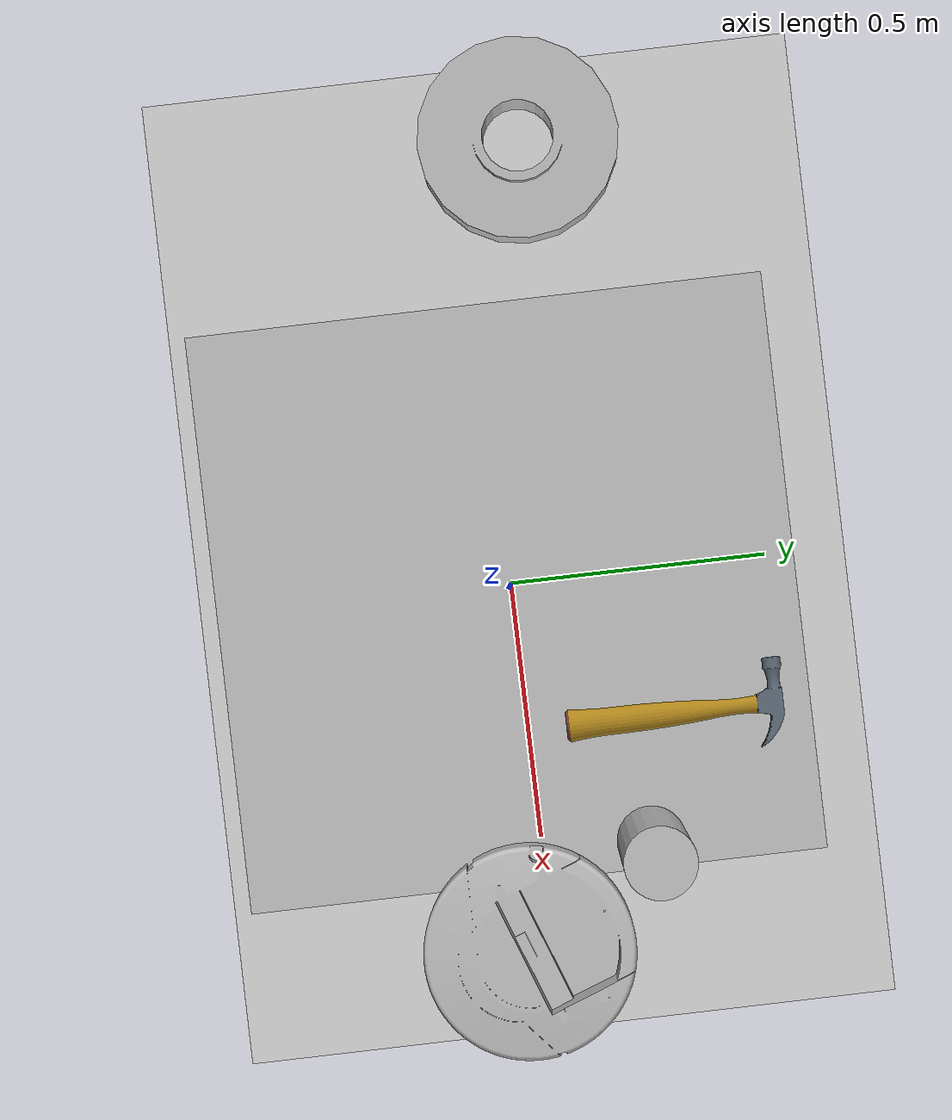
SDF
<sdf version="1.6">
 <world name="default">
  <light name="sun" type="directional">
   <pose>0 0 10 0 -0 0</pose>
   <diffuse>0.8 0.8 0.8 1</diffuse>
   <specular>0.2 0.2 0.2 1</specular>
   <attenuation>
    <range>1000</range>
    <constant>0.9</constant>
    <linear>0.01</linear>
    <quadratic>0.001</quadratic>
   </attenuation>
   <direction>-0.5 0.1 -0.9</direction>
  </light>
  <model name="ground_plane">
   <static>1</static>
   <link name="link">
    <collision name="collision">
     <geometry><plane><normal>0 0 1</normal><size>100 100</size></plane></geometry>
     <surface><friction><ode><mu>100</mu><mu2>50</mu2></ode></friction></surface>
    </collision>
    <visual name="visual">
     <cast_shadows>0</cast_shadows>
     <geometry><plane><normal>0 0 1</normal><size>100 100</size></plane></geometry>
     <material>
      <script><uri>file://media/materials/scripts/gazebo.material</uri><name>Gazebo/Grey</name></script>
     </material>
    </visual>
   </link>
  </model>
  <gravity>0 0 -9.8</gravity>
  <magnetic_field>6e-06 2.3e-05 -4.2e-05</magnetic_field>
  <atmosphere type="adiabatic"/>
  <physics name="default_physics" default="0" type="ode">
   <max_step_size>0.001</max_step_size>
   <real_time_factor>1</real_time_factor>
   <real_time_update_rate>1000</real_time_update_rate>
  </physics>
  <scene><ambient>0.4 0.4 0.4 1</ambient><background>0.7 0.7 0.7 1</background><shadows>1</shadows></scene>
  <spherical_coordinates>
   <surface_model>EARTH_WGS84</surface_model>
   <latitude_deg>0</latitude_deg>
   <longitude_deg>0</longitude_deg>
   <elevation>0</elevation>
   <heading_deg>0</heading_deg>
  </spherical_coordinates>
  <model name="coke_can">
   <link name="link">
    <inertial>
     <pose>-0.01 -0.012 0.15 0 -0 0</pose>
     <mass>0.39</mass>
     <inertia><ixx>0.00058</ixx><ixy>0</ixy><ixz>0</ixz><iyy>0.00058</iyy><iyz>0</iyz><izz>0.00019</izz></inertia>
    </inertial>
    <collision name="collision">
     <pose>0 0 -0.46 0 -0 0</pose>
     <geometry><mesh><uri>model://coke_can/meshes/coke_can.dae</uri><scale>1 1 1</scale></mesh></geometry>
     <surface>
      <friction><ode><mu>1</mu><mu2>1</mu2></ode></friction>
      <contact><ode><kp>1e+07</kp><kd>1</kd><min_depth>0.001</min_depth><max_vel>0.1</max_vel></ode></contact>
     </surface>
    </collision>
    <visual name="visual">
     <pose>0 0 -0.46 0 -0 0</pose>
     <geometry><mesh><uri>model://coke_can/meshes/coke_can.dae</uri><scale>1 1 1</scale></mesh></geometry>
    </visual>
   </link>
   <pose>-8e-06 0.199942 0.771147 -0.006158 0.002211 -0.396631</pose>
  </model>
  <model name="beer">
   <link name="link">
    <pose>0 0 0.115 0 -0 0</pose>
    <inertial>
     <mass>0.39</mass>
     <inertia><ixx>0.00058</ixx><ixy>0</ixy><ixz>0</ixz><iyy>0.00058</iyy><iyz>0</iyz><izz>0.00019</izz></inertia>
    </inertial>
    <collision name="collision">
     <geometry><cylinder><radius>0.055</radius><length>0.23</length></cylinder></geometry>
    </collision>
    <visual name="visual">
     <geometry><cylinder><radius>0.055</radius><length>0.23</length></cylinder></geometry>
     <material>
      <script>
       <uri>model://beer/materials/scripts</uri>
       <uri>model://beer/materials/textures</uri>
       <name>Beer/Diffuse</name>
      </script>
     </material>
    </visual>
   </link>
   <pose>0.414397 0.183402 0.77499 1e-06 -2.7e-05 -0.001998</pose>
  </model>
  <model name="create">
   <link name="base">
    <inertial>
     <pose>0.001453 -0.000453 0.029787 0 -0 0</pose>
     <inertia>
      <ixx>0.05864</ixx>
      <ixy>0.000124</ixy>
      <ixz>0.000615</ixz>
      <iyy>0.058786</iyy>
      <iyz>1.4e-05</iyz>
      <izz>1.53244</izz>
     </inertia>
     <mass>2.234</mass>
    </inertial>
    <collision name="base_collision">
     <pose>0 0 0.0478 0 -0 0</pose>
     <geometry><cylinder><radius>0.016495</radius><length>0.061163</length></cylinder></geometry>
    </collision>
    <visual name="base_visual">
     <pose>0 0 0.0478 0 -0 0</pose>
     <geometry><mesh><uri>model://create/meshes/create_body.dae</uri><scale>1 1 1</scale></mesh></geometry>
    </visual>
    <collision name="front_wheel_collision">
     <pose>0.13 0 0.017 -0 1.5707 1.5707</pose>
     <geometry><sphere><radius>0.018</radius></sphere></geometry>
     <surface>
      <friction><ode><mu>0</mu><mu2>0</mu2><fdir1>0 0 0</fdir1><slip1>0</slip1><slip2>0</slip2></ode></friction>
     </surface>
    </collision>
    <visual name="front_wheel_visual">
     <pose>0.13 0 0.017 -0 1.5707 1.5707</pose>
     <geometry><sphere><radius>0.009</radius></sphere></geometry>
    </visual>
    <collision name="rear_wheel_collision">
     <pose>-0.13 0 0.017 -0 1.5707 1.5707</pose>
     <geometry><sphere><radius>0.015</radius></sphere></geometry>
     <surface>
      <friction><ode><mu>0</mu><mu2>0</mu2><fdir1>0 0 0</fdir1><slip1>0</slip1><slip2>0</slip2></ode></friction>
     </surface>
    </collision>
    <visual name="rear_wheel_visual">
     <pose>-0.13 0 0.017 -0 1.5707 1.5707</pose>
     <geometry><sphere><radius>0.0075</radius></sphere></geometry>
    </visual>
    <sensor name="left_cliff_sensor" type="ray">
     <pose>0.07 0.14 0.027 0 1.57079 0</pose>
     <ray>
      <scan>
       <horizontal>
        <samples>1</samples>
        <resolution>1</resolution>
        <min_angle>0</min_angle>
        <max_angle>0</max_angle>
       </horizontal>
       <vertical><samples>1</samples><min_angle>0</min_angle><max_angle>0</max_angle></vertical>
      </scan>
      <range><min>0.01</min><max>0.04</max><resolution>0.1</resolution></range>
     </ray>
    </sensor>
    <sensor name="leftfront_cliff_sensor" type="ray">
     <pose>0.15 0.04 0.027 0 1.57079 0</pose>
     <ray>
      <scan>
       <horizontal>
        <samples>1</samples>
        <resolution>1</resolution>
        <min_angle>0</min_angle>
        <max_angle>0</max_angle>
       </horizontal>
       <vertical><samples>1</samples><min_angle>0</min_angle><max_angle>0</max_angle></vertical>
      </scan>
      <range><min>0.01</min><max>0.04</max><resolution>0.1</resolution></range>
     </ray>
    </sensor>
    <sensor name="right_cliff_sensor" type="ray">
     <pose>0.07 -0.14 0.027 0 1.57079 0</pose>
     <ray>
      <scan>
       <horizontal>
        <samples>1</samples>
        <resolution>1</resolution>
        <min_angle>0</min_angle>
        <max_angle>0</max_angle>
       </horizontal>
       <vertical><samples>1</samples><min_angle>0</min_angle><max_angle>0</max_angle></vertical>
      </scan>
      <range><min>0.01</min><max>0.04</max><resolution>0.1</resolution></range>
     </ray>
    </sensor>
    <sensor name="rightfront_cliff_sensor" type="ray">
     <pose>0.15 -0.04 0.027 0 1.57079 0</pose>
     <ray>
      <scan>
       <horizontal>
        <samples>1</samples>
        <resolution>1</resolution>
        <min_angle>0</min_angle>
        <max_angle>0</max_angle>
       </horizontal>
       <vertical><samples>1</samples><min_angle>0</min_angle><max_angle>0</max_angle></vertical>
      </scan>
      <range><min>0.01</min><max>0.04</max><resolution>0.1</resolution></range>
     </ray>
    </sensor>
    <sensor name="wall_sensor" type="ray">
     <pose>0.09 -0.12 0.059 0 0 -1</pose>
     <ray>
      <scan>
       <horizontal>
        <samples>1</samples>
        <resolution>1</resolution>
        <min_angle>0</min_angle>
        <max_angle>0</max_angle>
       </horizontal>
       <vertical><samples>1</samples><min_angle>0</min_angle><max_angle>0</max_angle></vertical>
      </scan>
      <range><min>0.016</min><max>0.04</max><resolution>0.1</resolution></range>
     </ray>
    </sensor>
   </link>
   <link name="left_wheel">
    <pose>0 0.13 0.032 0 -0 0</pose>
    <inertial>
     <inertia><ixx>0.001</ixx><ixy>0</ixy><ixz>0</ixz><iyy>0.001</iyy><iyz>0</iyz><izz>0.001</izz></inertia>
     <mass>0.01</mass>
    </inertial>
    <collision name="collision">
     <pose>0 0 0 -0 1.5707 1.5707</pose>
     <geometry><cylinder><radius>0.033</radius><length>0.023</length></cylinder></geometry>
     <surface>
      <friction><ode><mu>10</mu><mu2>10</mu2><fdir1>0 0 0</fdir1><slip1>0</slip1><slip2>0</slip2></ode></friction>
     </surface>
    </collision>
    <visual name="visual">
     <pose>0 0 0 -0 1.5707 1.5707</pose>
     <geometry><cylinder><radius>0.033</radius><length>0.023</length></cylinder></geometry>
    </visual>
   </link>
   <link name="right_wheel">
    <pose>0 -0.13 0.032 0 -0 0</pose>
    <inertial>
     <inertia><ixx>0.001</ixx><ixy>0</ixy><ixz>0</ixz><iyy>0.001</iyy><iyz>0</iyz><izz>0.001</izz></inertia>
     <mass>0.01</mass>
    </inertial>
    <collision name="collision">
     <pose>0 0 0 -0 1.5707 1.5707</pose>
     <geometry><cylinder><radius>0.033</radius><length>0.023</length></cylinder></geometry>
     <surface>
      <friction><ode><mu>10</mu><mu2>10</mu2><fdir1>0 0 0</fdir1><slip1>0</slip1><slip2>0</slip2></ode></friction>
     </surface>
    </collision>
    <visual name="visual">
     <pose>0 0 0 -0 1.5707 1.5707</pose>
     <geometry><cylinder><radius>0.033</radius><length>0.023</length></cylinder></geometry>
    </visual>
   </link>
   <joint name="left_wheel" type="revolute">
    <parent>base</parent>
    <child>left_wheel</child>
    <axis>
     <xyz>0 1 0</xyz>
     <use_parent_model_frame>1</use_parent_model_frame>
     <limit><lower>-1e+16</lower><upper>1e+16</upper></limit>
     <dynamics><spring_reference>0</spring_reference><spring_stiffness>0</spring_stiffness></dynamics>
    </axis>
   </joint>
   <joint name="right_wheel" type="revolute">
    <parent>base</parent>
    <child>right_wheel</child>
    <axis>
     <xyz>0 1 0</xyz>
     <use_parent_model_frame>1</use_parent_model_frame>
     <limit><lower>-1e+16</lower><upper>1e+16</upper></limit>
     <dynamics><spring_reference>0</spring_reference><spring_stiffness>0</spring_stiffness></dynamics>
    </axis>
   </joint>
   <pose>0.556513 -0.025846 0.775937 5.6e-05 -0.00049 -1.21837</pose>
  </model>
  <model name="disk_part">
   <link name="link">
    <inertial>
     <pose>0 0 0.02895 0 -0 0</pose>
     <mass>0.5</mass>
     <inertia>
      <ixx>0.00321218</ixx>
      <ixy>0</ixy>
      <ixz>0</ixz>
      <iyy>0.00321218</iyy>
      <iyz>0</iyz>
      <izz>0.00614499</izz>
     </inertia>
    </inertial>
    <collision name="collision">
     <pose>0 0 0.02895 0 -0 0</pose>
     <geometry><cylinder><length>0.0579</length><radius>0.15678</radius></cylinder></geometry>
    </collision>
    <visual name="visual">
     <geometry><mesh><uri>model://disk_part/meshes/disk.dae</uri><scale>1 1 1</scale></mesh></geometry>
     <material>
      <script>
       <uri>model://arm_part/materials/scripts</uri>
       <uri>model://arm_part/materials/textures</uri>
       <name>ArmPart/Diffuse</name>
      </script>
     </material>
    </visual>
   </link>
   <pose>-0.699983 0.100016 0.774995 -2.4e-05 -2.2e-05 -3.9e-05</pose>
  </model>
  <model name="hammer">
   <static>1</static>
   <link name="link">
    <collision name="collision">
     <geometry><mesh><uri>model://hammer/meshes/hammer.dae</uri><scale>1 1 1</scale></mesh></geometry>
    </collision>
    <visual name="visual">
     <geometry><mesh><uri>model://hammer/meshes/hammer.dae</uri><scale>1 1 1</scale></mesh></geometry>
    </visual>
   </link>
   <pose>0.2 0.30674 0.88508 0 -0 0</pose>
  </model>
  <model name="cafe_table">
   <static>1</static>
   <link name="link">
    <collision name="surface">
     <pose>0 0 0.755 0 -0 0</pose>
     <geometry><box><size>0.913 0.913 0.04</size></box></geometry>
    </collision>
    <collision name="column">
     <pose>0 0 0.37 0 -0 0</pose>
     <geometry><box><size>0.042 0.042 0.74</size></box></geometry>
    </collision>
    <collision name="base">
     <pose>0 0 0.02 0 -0 0</pose>
     <geometry><box><size>0.56 0.56 0.04</size></box></geometry>
    </collision>
    <visual name="visual">
     <geometry><mesh><uri>model://cafe_table/meshes/cafe_table.dae</uri><scale>1 1 1</scale></mesh></geometry>
    </visual>
   </link>
  </model>
 </world>
</sdf>
